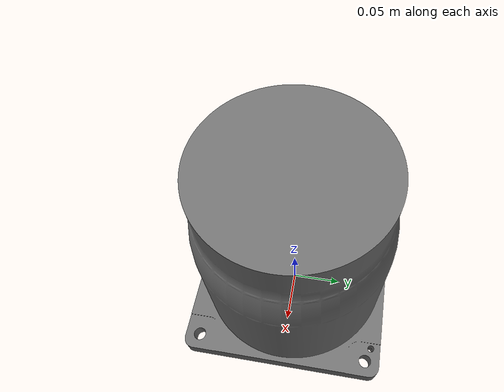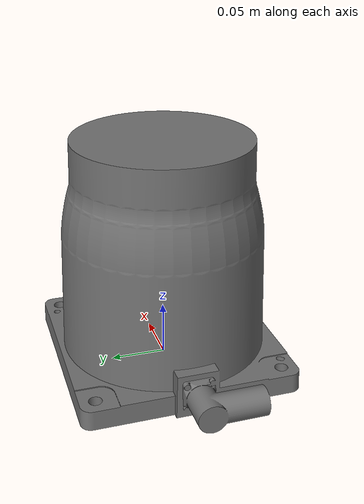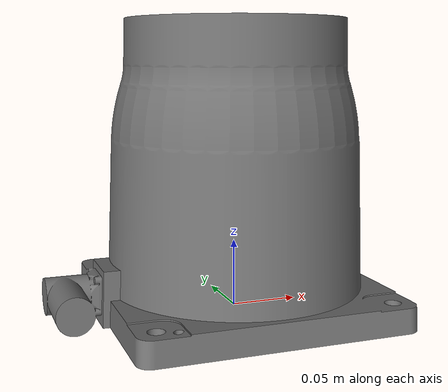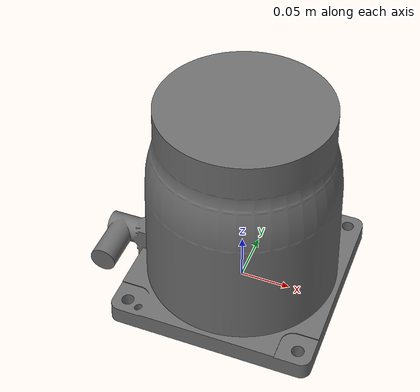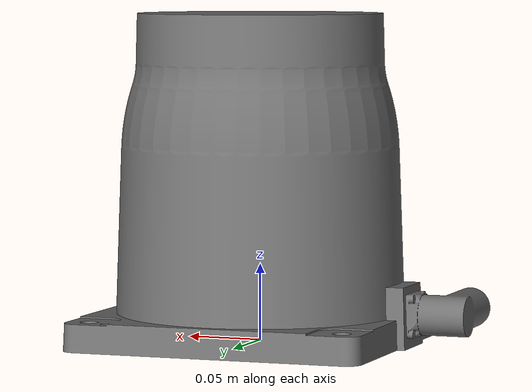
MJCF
<mujoco model="base_link">
  <default>
    <default class="visual">
      <geom group="2" type="mesh" contype="0" conaffinity="0"/>
    </default>
    <default class="collision">
      <geom group="3" type="mesh"/>
    </default>
  </default>
  <asset>
    <material name="material_base_link_0" specular="0.20000000000000004" shininess="1.0" rgba="0.43921569 0.43921569 0.43921569 1.0"/>
    <mesh file="base_link.obj"/>
  </asset>
  <worldbody>
    <body name="base_link">
      <geom material="material_base_link_0" mesh="base_link" class="visual"/>
      <geom mesh="base_link" class="collision"/>
    </body>
  </worldbody>
</mujoco>
